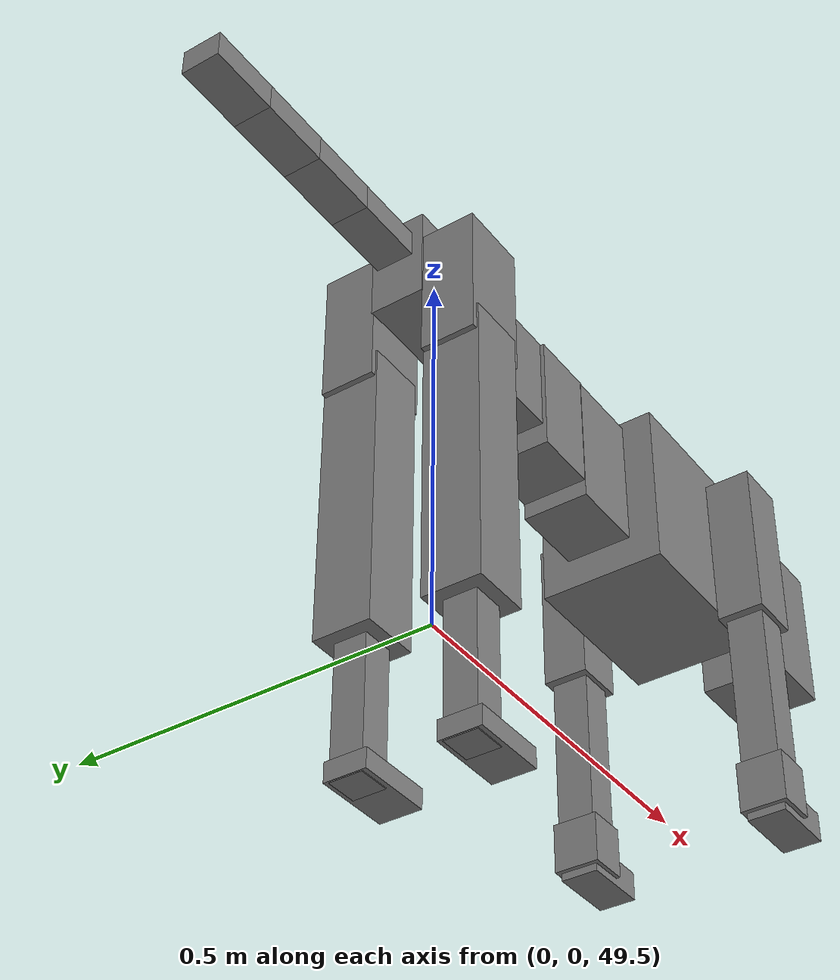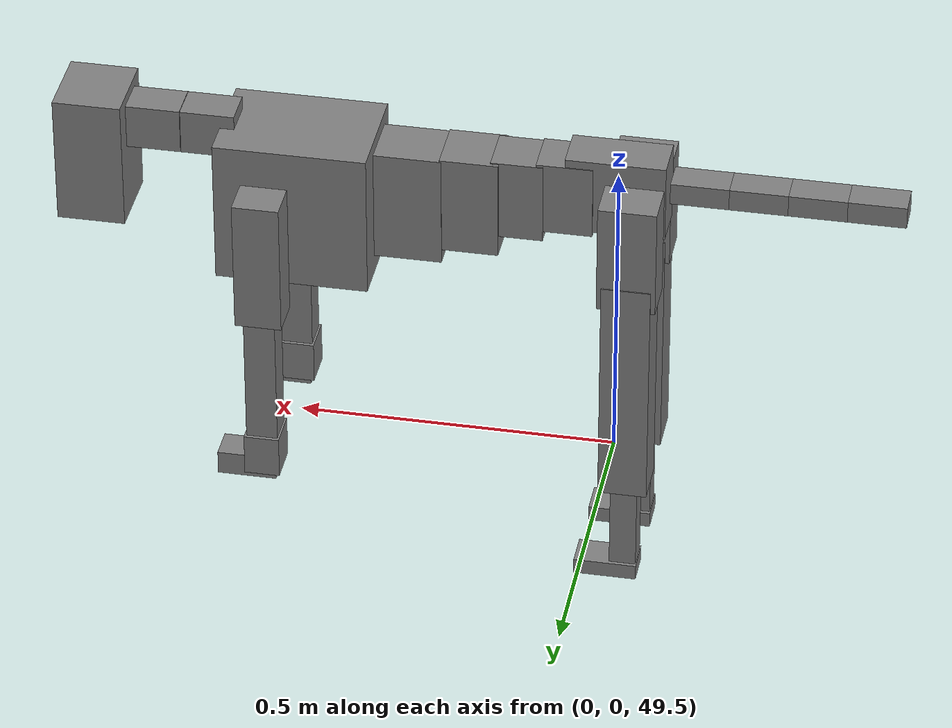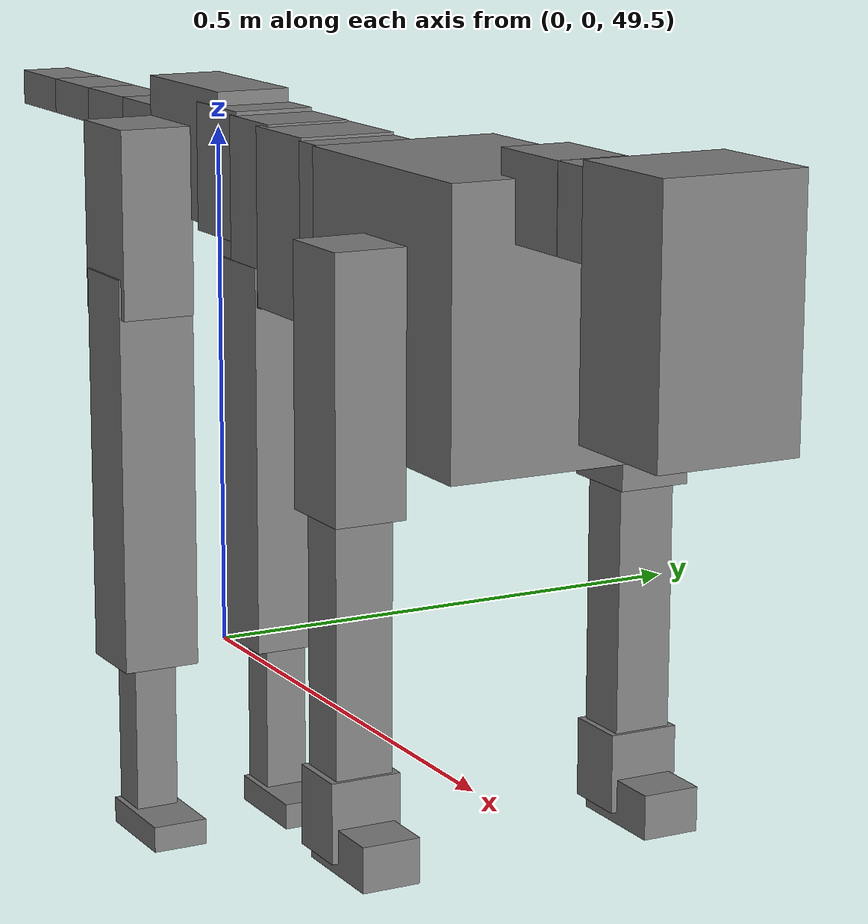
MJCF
<mujoco model="dog">

    <default>
        <joint armature="0.02" stiffness="1" damping="0.2" limited="true"/>
        <geom condim="3" friction="1 0.05 0.05" margin="0.01"/>
        <motor ctrllimited="true" ctrlrange="-1.0 1.0" forcelimited="true" gear="50"/>
    </default>

    <compiler inertiafromgeom="true" angle="radian"/>

    <option timestep="0.016" iterations="50" tolerance="1e-10" solver="Newton" jacobian="dense" cone="pyramidal"/>

    <size nconmax="20000" njmax="60000" nstack="5000000"/>
    <visual>
        <map force="0.1" zfar="30"/>
        <rgba haze="0.15 0.25 0.35 1"/>
        <quality shadowsize="2048"/>
        <global offwidth="800" offheight="800"/>
    </visual>

    <asset>
        <texture type="skybox" builtin="gradient" rgb1="0.3 0.5 0.7" rgb2="0 0 0" width="512" height="512"/>
        <texture name="texplane" type="2d" builtin="checker" rgb1=".2 .3 .4" rgb2=".1 0.15 0.2" width="512" height="512"
                 mark="cross" markrgb=".8 .8 .8"/>
        <texture name="texgeom" type="cube" builtin="flat" mark="cross" width="127" height="1278" rgb1="0.8 0.6 0.4"
                 rgb2="0.8 0.6 0.4" markrgb="1 1 1" random="0.01"/>

        <material name="matplane" reflectance="0.3" texture="texplane" texrepeat="1 1" texuniform="true"/>
        <material name="matgeom" texture="texgeom" texuniform="true" rgba="0.8 0.6 .4 1"/>
    </asset>

    <worldbody>
        <geom name="floor" pos="0 0 0" size="0 0 .25" type="plane" material="matplane" condim="3"/>

        <light directional="false" diffuse=".2 .2 .2" specular="0 0 0" pos="0 0 5" dir="0 0 -1" castshadow="false"/>
        <light mode="targetbodycom" target="torso" directional="false" diffuse=".8 .8 .8" specular="0.3 0.3 0.3"
               pos="0 0 4.0" dir="0 0 -1"/>

        <body name="root" pos="0 0 50">
            <freejoint name="root_1"/>
            <geom type="box" pos="0 0 -0.02" size="0.0774  0.0358  0.063" density="2030"/>

            <body name="spine1" pos="0.054 0 0">
                <joint name="spine1_y" axis="0 1 0" range="0 0.7" limited="true"/>
                <geom type="box" pos="0.02375 0 -0.03" size="0.04375  0.0375  0.05985" density="2030"/>

                <body name="spine2" pos="0.0612 0 0">
                    <joint name="spine2_y" axis="0 1 0" range="-0.15 0.15" limited="true"/>
                    <geom type="box" pos="0.03555  0  -0.04" size="0.04055  0.039  0.06615" density="2030"/>

                    <body name="spine3" pos="0.0730 0 0">
                        <joint name="spine3_y" axis="0 1 0" range="-0.15 0.15" limited="true"/>
                        <geom type="box" pos="0.03555  0  -0.057" size="0.04555  0.0445  0.081" density="2030"/>

                        <body name="spine4" pos="0.0780 0 0">
                            <joint name="spine4_y" axis="0 1 0" range="-0.15 0.15" limited="true"/>
                            <geom type="box" pos="0.05265  0  -0.07" size="0.05265  0.045  0.09135" density="2030"/>

                            <body name="torso" pos="0.1082 0 0">
                                <joint name="torso_y" axis="0 1 0" range="-0.15 0.15" limited="true"/>
                                <geom type="box" pos="0.11925  0  -0.085" size="0.11925  0.085  0.11745"
                                      density="2030"/>

                                <body name="neck1" pos="0.2160  0   0.0180">
                                    <joint name="neck1_y" axis="0 1 0" range="-1.2  -1" limited="true"/>
                                    <geom type="box" pos="0.0423  0  0" size="0.0423  0.03  0.036" density="2325"/>

                                    <body name="neck2" pos="0.0853  0  0">
                                        <joint name="neck2_y" axis="0 1 0" range="0.1  0" limited="true"/>
                                        <geom type="box" pos="0.0423  0  0" size="0.0423  0.03  0.036" density="2325"/>

                                        <body name="head" pos="0.0853  0  0">
                                            <joint name="head_y" axis="0 1 0" range="-0.3  -0.2" limited="true"/>
                                            <geom type="box" pos="0.0531  0  -0.055" size="0.0531  0.06  0.1044"
                                                  density="4030"/>

                                        </body>
                                    </body>
                                </body>

                                <body name="front_shoulder" pos="0.156  0   -0.0480">
                                    <joint name="front_shoulder_y" axis="0 1 0" range="-1 1.5" limited="true"/>
                                    <geom type="box" pos="0 0.13 -0.0818" size="0.0363  0.0310  0.1084" density="1158"/>
                                    <geom type="box" pos="0 -0.13 -0.0818" size="0.0363  0.0310  0.1084"
                                          density="1158"/>

                                    <body name="front_elbow" pos="0  0  -0.1636">
                                        <joint name="front_elbow_y" axis="0 1 0" range="-2 0" limited="true"/>
                                        <geom type="box" pos="0 0.13 -0.1252" size="0.0245  0.0250  0.1252"
                                              density="1081"/>
                                        <geom type="box" pos="0 -0.13 -0.1252" size="0.0245  0.0250  0.1252"
                                              density="1081"/>

                                        <body name="front_wrist" pos="0  0  -0.2504">
                                            <joint name="front_wrist_y" axis="0 1 0" range="-0.2 0" limited="true"/>
                                            <geom type="box" pos="0 0.13 -0.0208" size="0.0276  0.0306  0.0339"
                                                  density="1664"/>
                                            <geom type="box" pos="0 -0.13 -0.0208" size="0.0276  0.0306  0.0339"
                                                  density="1664"/>

                                            <body name="front_finger_end" pos="0  0  -0.0415">
                                                <joint name="front_finger_y" axis="0 1 0" range="-0.4 1"
                                                       limited="true"/>
                                                <geom type="box" pos="0.0252  0.13  -0.0042"
                                                      size="0.0463  0.0252  0.0192" density="1515"/>
                                                <geom type="box" pos="0.0252  -0.13  -0.0042"
                                                      size="0.0463  0.0252  0.0192" density="1515"/>

                                            </body>

                                        </body>
                                    </body>
                                </body>

                            </body>
                        </body>
                    </body>
                </body>
            </body>

            <body name="back_hip" pos="-0.03 0 -0.018">
                <joint name="back_hip_y" axis="0 1 0" range="-1.5 0.3" limited="true"/>
                <geom type="box" pos="0 0.07 -0.0667" size="0.0452  0.0354  0.0895" density="1154"/>
                <geom type="box" pos="0 -0.07 -0.0667" size="0.0452  0.0354  0.0895" density="1154"/>

                <body name="back_knee" pos="0  0  -0.1334">
                    <joint name="back_knee_y" axis="0 1 0" range="0 2.8" limited="true"/>
                    <geom type="box" pos="0 0.07 -0.1760" size="0.0381  0.0375  0.1915" density="1227"/>
                    <geom type="box" pos="0 -0.07 -0.1760" size="0.0381  0.0375  0.1915" density="1227"/>

                    <body name="back_ankle" pos="0  0  -0.3519">
                        <joint name="back_ankle_y" axis="0 1 0" range="-2.2 0" limited="true"/>
                        <geom type="box" pos="0 0.07 -0.0880" size="0.0210  0.0210  0.0992" density="1284"/>
                        <geom type="box" pos="0 -0.07 -0.0880" size="0.0210  0.0210  0.0992" density="1284"/>

                        <body name="back_toe_end" pos="0  0  -0.1759">
                            <joint name="back_toe_y" axis="0 1 0" range="-0.4 1" limited="true"/>
                            <geom type="box" pos="0.0269  0.07  0.0024" size="0.0493  0.0269  0.0126" density="1515"/>
                            <geom type="box" pos="0.0269  -0.07  0.0024" size="0.0493  0.0269  0.0126" density="1515"/>

                        </body>
                    </body>
                </body>
            </body>

            <body name="tail1" pos="-0.074 0 -0.006">
                <joint name="tail1_y" axis="0 1 0" range="-0.2 0.2" limited="true"/>
                <geom type="box" pos="-0.0536  0  0" size="0.045  0.025  0.0175" density="1587"/>

                <body name="tail2" pos="-0.09 0 0">
                    <joint name="tail2_y" axis="0 1 0" range="-0.2 0.2" limited="true"/>
                    <geom type="box" pos="-0.0536  0  0" size="0.045  0.025  0.0175" density="1587"/>

                    <body name="tail3" pos="-0.09 0 0">
                        <joint name="tail3_y" axis="0 1 0" range="-0.2 0.2" limited="true"/>
                        <geom type="box" pos="-0.0536  0  0" size="0.045  0.025  0.0175" density="1587"/>

                        <body name="tail4" pos="-0.09 0 0">
                            <joint name="tail4_y" axis="0 1 0" range="-0.2 0.2" limited="true"/>
                            <geom type="box" pos="-0.0536  0  0" size="0.045  0.025  0.0175" density="1587"/>

                        </body>
                    </body>
                </body>
            </body>
        </body>
    </worldbody>

    <actuator>
        <motor joint="spine1_y" forcerange="-150 150     "/>
        <motor joint="spine2_y" forcerange="-150 150     "/>
        <motor joint="spine3_y" forcerange="-150 150     "/>
        <motor joint="spine4_y" forcerange="-150 150     "/>
        <motor joint="torso_y" forcerange="-150 150     "/>
        <motor joint="neck1_y" forcerange="-100 100       "/>
        <motor joint="neck2_y" forcerange="-100 100       "/>
        <motor joint="head_y" forcerange="-150 150       "/>
        <motor joint="front_shoulder_y" forcerange="-177.72 128.84"/>
        <motor joint="front_elbow_y" forcerange="-130.31 151.51"/>
        <motor joint="front_wrist_y" forcerange="-129.14 115.82"/>
        <motor joint="front_finger_y" forcerange="-74.39 20.25"/>
        <motor joint="back_hip_y" forcerange="-301.78 370.47"/>
        <motor joint="back_knee_y" forcerange="-399.07 346.91"/>
        <motor joint="back_angle_y" forcerange="-125.29 110.25"/>
        <motor joint="back_toe_y" forcerange="-93.08 41.91"/>
        <motor joint="tail1_y" forcerange="-50 50     "/>
        <motor joint="tail2_y" forcerange="-50 50     "/>
        <motor joint="tail3_y" forcerange="-50 50     "/>
        <motor joint="tail4_y" forcerange="-50 50     "/>
    </actuator>
</mujoco>
